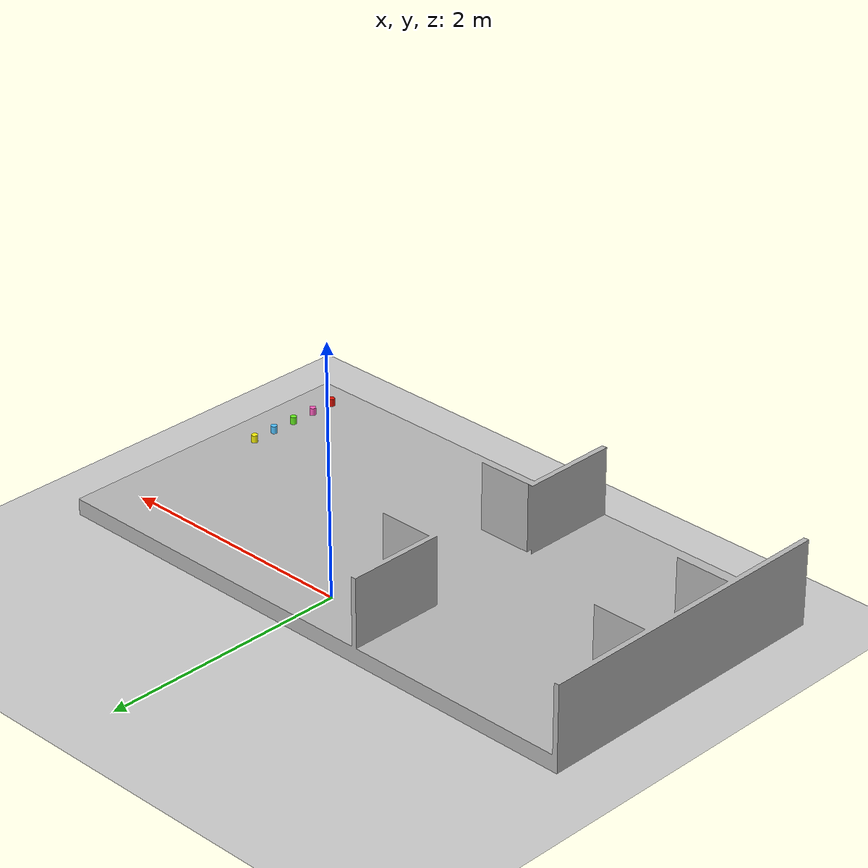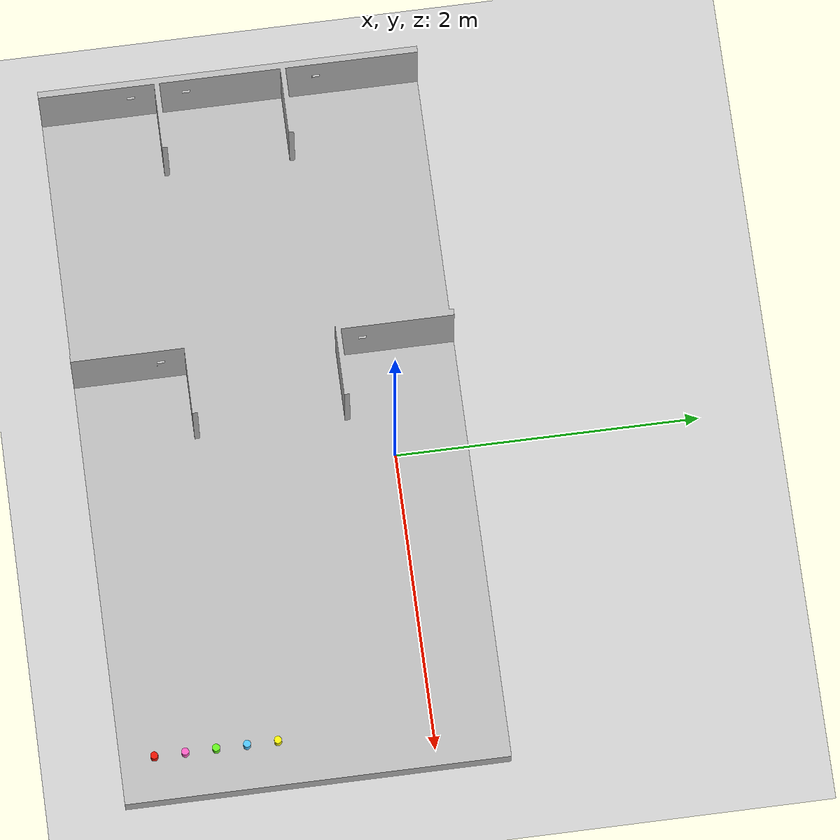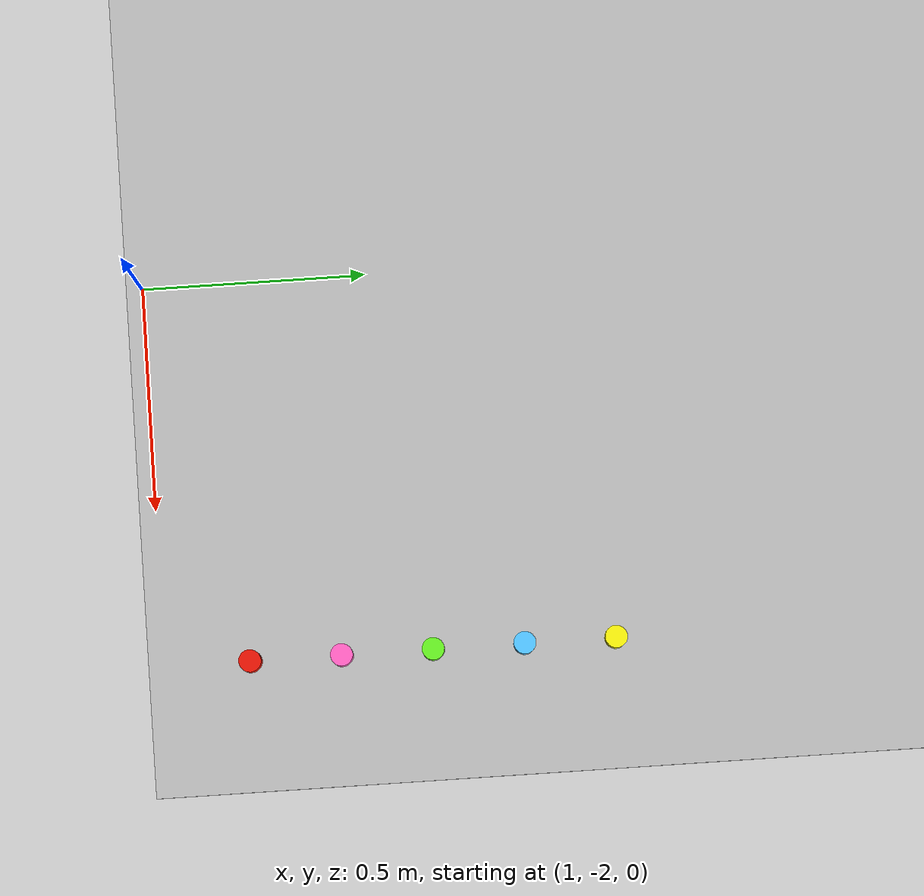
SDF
<sdf version="1.6">
 <world name="default">
  <light name="sun" type="directional">
   <pose>0 0 10 0 -0 0</pose>
   <diffuse>0.8 0.8 0.8 1</diffuse>
   <specular>0.1 0.1 0.1 1</specular>
   <attenuation>
    <range>1000</range>
    <constant>0.9</constant>
    <linear>0.01</linear>
    <quadratic>0.001</quadratic>
   </attenuation>
   <direction>-0.5 0.5 -1</direction>
  </light>
  <model name="ground_plane">
   <static>1</static>
   <link name="link">
    <collision name="collision">
     <geometry><plane><normal>0 0 1</normal><size>100 100</size></plane></geometry>
     <surface><friction><ode><mu>100</mu><mu2>50</mu2></ode></friction></surface>
    </collision>
    <visual name="visual">
     <cast_shadows>0</cast_shadows>
     <geometry><plane><normal>0 0 1</normal><size>100 100</size></plane></geometry>
     <material>
      <script><uri>file://media/materials/scripts/gazebo.material</uri><name>Gazebo/Grey</name></script>
     </material>
    </visual>
   </link>
  </model>
  <gravity>0 0 -9.8</gravity>
  <magnetic_field>6e-06 2.3e-05 -4.2e-05</magnetic_field>
  <atmosphere type="adiabatic"/>
  <physics name="default_physics" default="0" type="ode">
   <max_step_size>0.001</max_step_size>
   <real_time_factor>1</real_time_factor>
   <real_time_update_rate>1000</real_time_update_rate>
  </physics>
  <scene><ambient>0.4 0.4 0.4 1</ambient><background>0.7 0.7 0.7 1</background><shadows>1</shadows></scene>
  <spherical_coordinates>
   <surface_model>EARTH_WGS84</surface_model>
   <latitude_deg>0</latitude_deg>
   <longitude_deg>0</longitude_deg>
   <elevation>0</elevation>
   <heading_deg>0</heading_deg>
  </spherical_coordinates>
  <model name="cylinder_medium_green">
   <pose>1.85371 -1.40 0.157689 4.6e-05 -0.000368 1.8e-05</pose>
   <link name="link_1">
    <inertial>
     <mass>0.04</mass>
     <inertia><ixx>0.145833</ixx><ixy>0</ixy><ixz>0</ixz><iyy>0.145833</iyy><iyz>0</iyz><izz>0.125</izz></inertia>
    </inertial>
    <visual name="visual">
     <geometry><cylinder><radius>0.0246</radius><length>0.06</length></cylinder></geometry>
     <material>
      <lighting>1</lighting>
      <script><uri>file://media/materials/scripts/gazebo.material</uri><name>Gazebo/Grey</name></script>
      <ambient>0.396 0.941 0.125 1</ambient>
      <diffuse>0.396 0.941 0.125 1</diffuse>
      <specular>0.1 0.1 0.1 1</specular>
      <emissive>0 0 0 1</emissive>
      <shader type="vertex"><normal_map>__default__</normal_map></shader>
     </material>
    </visual>
    <collision name="collision">
     <geometry><cylinder><radius>0.0246</radius><length>0.06</length></cylinder></geometry>
     <surface>
      <friction>
       <ode><mu>1</mu><mu2>1</mu2><fdir1>0 0 0</fdir1><slip1>0</slip1><slip2>0</slip2></ode>
       <torsional>
        <coefficient>1</coefficient>
        <patch_radius>0</patch_radius>
        <surface_radius>0</surface_radius>
        <use_patch_radius>1</use_patch_radius>
        <ode><slip>0</slip></ode>
       </torsional>
      </friction>
      <bounce><restitution_coefficient>0</restitution_coefficient><threshold>1e+06</threshold></bounce>
      <contact>
       <collide_without_contact>0</collide_without_contact>
       <collide_without_contact_bitmask>1</collide_without_contact_bitmask>
       <collide_bitmask>1</collide_bitmask>
       <ode>
        <soft_cfm>0</soft_cfm>
        <soft_erp>0.2</soft_erp>
        <kp>1e+13</kp>
        <kd>1</kd>
        <max_vel>0.01</max_vel>
        <min_depth>0</min_depth>
       </ode>
       <bullet>
        <split_impulse>1</split_impulse>
        <split_impulse_penetration_threshold>-0.01</split_impulse_penetration_threshold>
        <soft_cfm>0</soft_cfm>
        <soft_erp>0.2</soft_erp>
        <kp>1e+13</kp>
        <kd>1</kd>
       </bullet>
      </contact>
     </surface>
    </collision>
   </link>
   <static>0</static>
  </model>
  <model name="cylinder_medium_red">
   <pose>1.85371 -1.80 0.157677 1e-05 -0.000132 0</pose>
   <link name="link_1">
    <inertial>
     <mass>0.04</mass>
     <inertia><ixx>0.145833</ixx><ixy>0</ixy><ixz>0</ixz><iyy>0.145833</iyy><iyz>0</iyz><izz>0.125</izz></inertia>
    </inertial>
    <visual name="visual">
     <geometry><cylinder><radius>0.0246</radius><length>0.06</length></cylinder></geometry>
     <material>
      <lighting>1</lighting>
      <script><uri>file://media/materials/scripts/gazebo.material</uri><name>Gazebo/Grey</name></script>
      <ambient>0.901 0.074 0.015 1</ambient>
      <diffuse>0.901 0.074 0.015 1</diffuse>
      <specular>0.1 0.1 0.1 1</specular>
      <emissive>0 0 0 1</emissive>
      <shader type="vertex"><normal_map>__default__</normal_map></shader>
     </material>
    </visual>
    <collision name="collision">
     <geometry><cylinder><radius>0.0246</radius><length>0.06</length></cylinder></geometry>
     <surface>
      <friction>
       <ode><mu>1</mu><mu2>1</mu2><fdir1>0 0 0</fdir1><slip1>0</slip1><slip2>0</slip2></ode>
       <torsional>
        <coefficient>1</coefficient>
        <patch_radius>0</patch_radius>
        <surface_radius>0</surface_radius>
        <use_patch_radius>1</use_patch_radius>
        <ode><slip>0</slip></ode>
       </torsional>
      </friction>
      <bounce><restitution_coefficient>0</restitution_coefficient><threshold>1e+06</threshold></bounce>
      <contact>
       <collide_without_contact>0</collide_without_contact>
       <collide_without_contact_bitmask>1</collide_without_contact_bitmask>
       <collide_bitmask>1</collide_bitmask>
       <ode>
        <soft_cfm>0</soft_cfm>
        <soft_erp>0.2</soft_erp>
        <kp>1e+13</kp>
        <kd>1</kd>
        <max_vel>0.01</max_vel>
        <min_depth>0</min_depth>
       </ode>
       <bullet>
        <split_impulse>1</split_impulse>
        <split_impulse_penetration_threshold>-0.01</split_impulse_penetration_threshold>
        <soft_cfm>0</soft_cfm>
        <soft_erp>0.2</soft_erp>
        <kp>1e+13</kp>
        <kd>1</kd>
       </bullet>
      </contact>
     </surface>
    </collision>
   </link>
   <static>0</static>
  </model>
  <model name="cylinder_medium_yellow">
   <pose>1.85371 -1.0 0.157687 5.5e-04 7.3e-04 -0</pose>
   <link name="link_1">
    <inertial>
     <mass>0.04</mass>
     <inertia><ixx>0.145833</ixx><ixy>0</ixy><ixz>0</ixz><iyy>0.145833</iyy><iyz>0</iyz><izz>0.125</izz></inertia>
    </inertial>
    <visual name="visual">
     <geometry><cylinder><radius>0.0246</radius><length>0.06</length></cylinder></geometry>
     <material>
      <lighting>1</lighting>
      <script><uri>file://media/materials/scripts/gazebo.material</uri><name>Gazebo/Grey</name></script>
      <ambient>0.968 0.945 0.027 1</ambient>
      <diffuse>0.968 0.945 0.027 1</diffuse>
      <specular>0.1 0.1 0.1 1</specular>
      <emissive>0 0 0 1</emissive>
      <shader type="vertex"><normal_map>__default__</normal_map></shader>
     </material>
    </visual>
    <collision name="collision">
     <geometry><cylinder><radius>0.0246</radius><length>0.06</length></cylinder></geometry>
     <surface>
      <friction>
       <ode><mu>1</mu><mu2>1</mu2><fdir1>0 0 0</fdir1><slip1>0</slip1><slip2>0</slip2></ode>
       <torsional>
        <coefficient>1</coefficient>
        <patch_radius>0</patch_radius>
        <surface_radius>0</surface_radius>
        <use_patch_radius>1</use_patch_radius>
        <ode><slip>0</slip></ode>
       </torsional>
      </friction>
      <bounce><restitution_coefficient>0</restitution_coefficient><threshold>1e+06</threshold></bounce>
      <contact>
       <collide_without_contact>0</collide_without_contact>
       <collide_without_contact_bitmask>1</collide_without_contact_bitmask>
       <collide_bitmask>1</collide_bitmask>
       <ode>
        <soft_cfm>0</soft_cfm>
        <soft_erp>0.2</soft_erp>
        <kp>1e+13</kp>
        <kd>1</kd>
        <max_vel>0.01</max_vel>
        <min_depth>0</min_depth>
       </ode>
       <bullet>
        <split_impulse>1</split_impulse>
        <split_impulse_penetration_threshold>-0.01</split_impulse_penetration_threshold>
        <soft_cfm>0</soft_cfm>
        <soft_erp>0.2</soft_erp>
        <kp>1e+13</kp>
        <kd>1</kd>
       </bullet>
      </contact>
     </surface>
    </collision>
   </link>
   <static>0</static>
  </model>
  <model name="cylinder_medium_pink">
   <pose>1.85371 -1.60 0.15768 -0.000402 -0.000474 0.00024</pose>
   <link name="link_1">
    <inertial>
     <mass>0.04</mass>
     <inertia><ixx>0.145833</ixx><ixy>0</ixy><ixz>0</ixz><iyy>0.145833</iyy><iyz>0</iyz><izz>0.125</izz></inertia>
    </inertial>
    <visual name="visual">
     <geometry><cylinder><radius>0.0246</radius><length>0.06</length></cylinder></geometry>
     <material>
      <lighting>1</lighting>
      <script><uri>file://media/materials/scripts/gazebo.material</uri><name>Gazebo/Grey</name></script>
      <ambient>1 0.372 0.756 1</ambient>
      <diffuse>1 0.372 0.756 1</diffuse>
      <specular>0.1 0.1 0.1 1</specular>
      <emissive>0 0 0 1</emissive>
      <shader type="vertex"><normal_map>__default__</normal_map></shader>
     </material>
    </visual>
    <collision name="collision">
     <geometry><cylinder><radius>0.0246</radius><length>0.06</length></cylinder></geometry>
     <surface>
      <friction>
       <ode><mu>1</mu><mu2>1</mu2><fdir1>0 0 0</fdir1><slip1>0</slip1><slip2>0</slip2></ode>
       <torsional>
        <coefficient>1</coefficient>
        <patch_radius>0</patch_radius>
        <surface_radius>0</surface_radius>
        <use_patch_radius>1</use_patch_radius>
        <ode><slip>0</slip></ode>
       </torsional>
      </friction>
      <bounce><restitution_coefficient>0</restitution_coefficient><threshold>1e+06</threshold></bounce>
      <contact>
       <collide_without_contact>0</collide_without_contact>
       <collide_without_contact_bitmask>1</collide_without_contact_bitmask>
       <collide_bitmask>1</collide_bitmask>
       <ode>
        <soft_cfm>0</soft_cfm>
        <soft_erp>0.2</soft_erp>
        <kp>1e+13</kp>
        <kd>1</kd>
        <max_vel>0.01</max_vel>
        <min_depth>0</min_depth>
       </ode>
       <bullet>
        <split_impulse>1</split_impulse>
        <split_impulse_penetration_threshold>-0.01</split_impulse_penetration_threshold>
        <soft_cfm>0</soft_cfm>
        <soft_erp>0.2</soft_erp>
        <kp>1e+13</kp>
        <kd>1</kd>
       </bullet>
      </contact>
     </surface>
    </collision>
   </link>
   <static>0</static>
  </model>
  <model name="cylinder_medium_blue">
   <pose>1.85371 -1.20 0.157677 -7.8e-05 -9.2e-05 0</pose>
   <link name="link_1">
    <inertial>
     <mass>0.04</mass>
     <inertia><ixx>0.145833</ixx><ixy>0</ixy><ixz>0</ixz><iyy>0.145833</iyy><iyz>0</iyz><izz>0.125</izz></inertia>
    </inertial>
    <visual name="visual">
     <geometry><cylinder><radius>0.0246</radius><length>0.06</length></cylinder></geometry>
     <material>
      <lighting>1</lighting>
      <script><uri>file://media/materials/scripts/gazebo.material</uri><name>Gazebo/Grey</name></script>
      <ambient>0.313 0.764 1 1</ambient>
      <diffuse>0.313 0.764 1 1</diffuse>
      <specular>0.1 0.1 0.1 1</specular>
      <emissive>0 0 0 1</emissive>
      <shader type="vertex"><normal_map>__default__</normal_map></shader>
     </material>
    </visual>
    <collision name="collision">
     <geometry><cylinder><radius>0.0246</radius><length>0.06</length></cylinder></geometry>
     <surface>
      <friction>
       <ode><mu>1</mu><mu2>1</mu2><fdir1>0 0 0</fdir1><slip1>0</slip1><slip2>0</slip2></ode>
       <torsional>
        <coefficient>1</coefficient>
        <patch_radius>0</patch_radius>
        <surface_radius>0</surface_radius>
        <use_patch_radius>1</use_patch_radius>
        <ode><slip>0</slip></ode>
       </torsional>
      </friction>
      <bounce><restitution_coefficient>0</restitution_coefficient><threshold>1e+06</threshold></bounce>
      <contact>
       <collide_without_contact>0</collide_without_contact>
       <collide_without_contact_bitmask>1</collide_without_contact_bitmask>
       <collide_bitmask>1</collide_bitmask>
       <ode>
        <soft_cfm>0</soft_cfm>
        <soft_erp>0.2</soft_erp>
        <kp>1e+13</kp>
        <kd>1</kd>
        <max_vel>0.01</max_vel>
        <min_depth>0</min_depth>
       </ode>
       <bullet>
        <split_impulse>1</split_impulse>
        <split_impulse_penetration_threshold>-0.01</split_impulse_penetration_threshold>
        <soft_cfm>0</soft_cfm>
        <soft_erp>0.2</soft_erp>
        <kp>1e+13</kp>
        <kd>1</kd>
       </bullet>
      </contact>
     </surface>
    </collision>
   </link>
   <static>0</static>
  </model>
  <model name="warehouse_0">
   <link name="link_0">
    <inertial>
     <mass>1</mass>
     <inertia>
      <ixx>0.166667</ixx>
      <ixy>0</ixy>
      <ixz>0</ixz>
      <iyy>0.166667</iyy>
      <iyz>0</iyz>
      <izz>0.166667</izz>
     </inertia>
    </inertial>
    <visual name="visual">
     <geometry><mesh><uri>file://models/stl/almacen/warehouse.dae</uri><scale>1 1 1</scale></mesh></geometry>
    </visual>
    <collision name="collision">
     <geometry><mesh><uri>file://models/stl/almacen/warehouse.dae</uri><scale>1 1 1</scale></mesh></geometry>
     <surface>
      <friction>
       <ode><mu>1</mu><mu2>1</mu2><fdir1>0 0 0</fdir1><slip1>0</slip1><slip2>0</slip2></ode>
       <torsional>
        <coefficient>1</coefficient>
        <patch_radius>0</patch_radius>
        <surface_radius>0</surface_radius>
        <use_patch_radius>1</use_patch_radius>
        <ode><slip>0</slip></ode>
       </torsional>
      </friction>
      <bounce><restitution_coefficient>0</restitution_coefficient><threshold>1e+06</threshold></bounce>
      <contact>
       <collide_without_contact>0</collide_without_contact>
       <collide_without_contact_bitmask>1</collide_without_contact_bitmask>
       <collide_bitmask>1</collide_bitmask>
       <ode>
        <soft_cfm>0</soft_cfm>
        <soft_erp>0.2</soft_erp>
        <kp>1e+13</kp>
        <kd>1</kd>
        <max_vel>0.01</max_vel>
        <min_depth>0</min_depth>
       </ode>
       <bullet>
        <split_impulse>1</split_impulse>
        <split_impulse_penetration_threshold>-0.01</split_impulse_penetration_threshold>
        <soft_cfm>0</soft_cfm>
        <soft_erp>0.2</soft_erp>
        <kp>1e+13</kp>
        <kd>1</kd>
       </bullet>
      </contact>
     </surface>
    </collision>
   </link>
   <static>1</static>
   <pose>-0.860664 -0.775595 0.127674 0 -0 0</pose>
  </model>
 </world>
</sdf>
